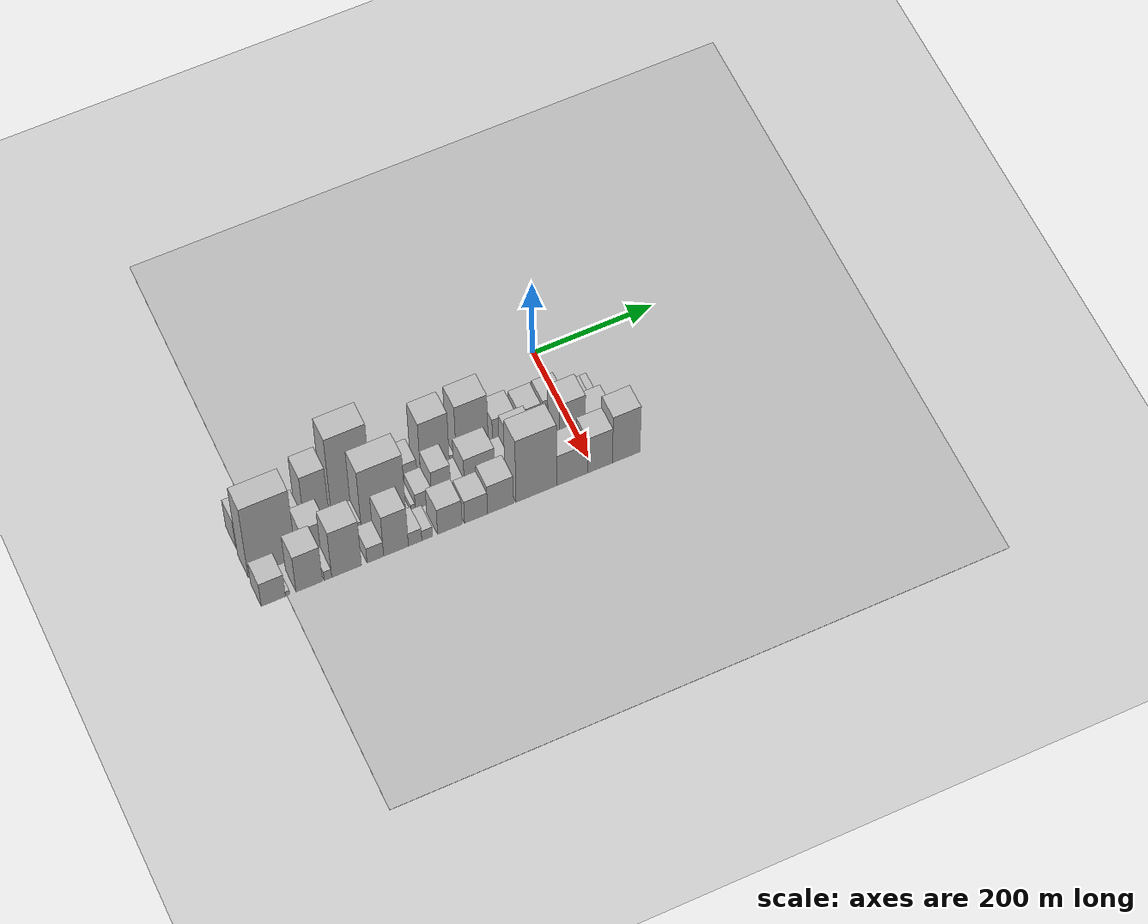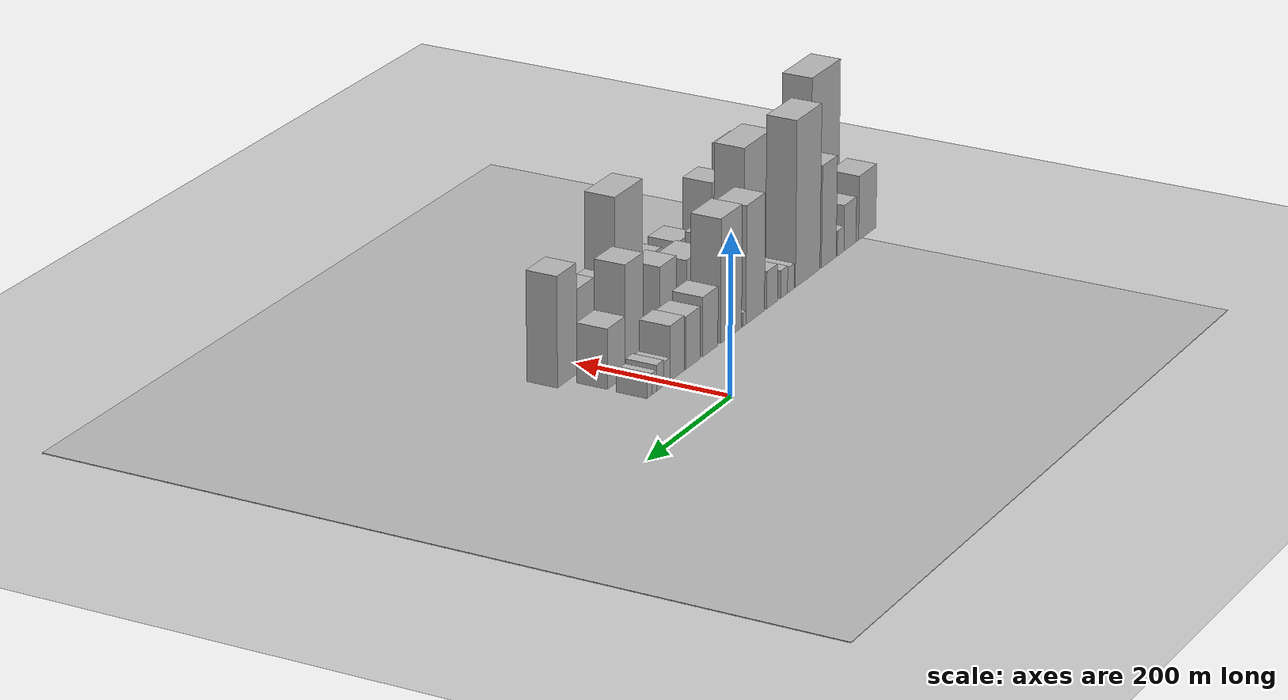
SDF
<sdf version="1.6">
 <world name="default">
  <include><name>ground_plane_1</name><uri>model://HANNAS_ground_plane</uri></include>
  <include>
   <name>ground_plane_2</name>
   <uri>model://HANNAS_ground_plane</uri>
   <pose>100 0 0  0 0 0</pose>
  </include>
  <model name="building_1">
   <static>1</static>
   <pose>100.0000 -514.2955 0 0.000000 0.000000 0.000000</pose>
   <link name="link">
    <pose>0 0 42.00 0 0 0</pose>
    <collision name="collision"><geometry><box><size>40.0000 47.4091 84.0000</size></box></geometry></collision>
    <visual name="visual">
     <cast_shadows>0</cast_shadows>
     <geometry><box><size>40.0000 47.4091 84.0000</size></box></geometry>
     <material>
      <script>
       <uri>model://HANNAS_wall/materials/scripts</uri>
       <uri>model://HANNAS_wall/materials/textures</uri>
       <name>vrc/HANNAS_wall</name>
      </script>
     </material>
    </visual>
   </link>
  </model>
  <model name="building_2">
   <static>1</static>
   <pose>100.0000 -486.8983 0 0.000000 0.000000 0.000000</pose>
   <link name="link">
    <pose>0 0 9.00 0 0 0</pose>
    <collision name="collision"><geometry><box><size>40.0000 7.3854 18.0000</size></box></geometry></collision>
    <visual name="visual">
     <cast_shadows>0</cast_shadows>
     <geometry><box><size>40.0000 7.3854 18.0000</size></box></geometry>
     <material>
      <script>
       <uri>model://HANNAS_wall/materials/scripts</uri>
       <uri>model://HANNAS_wall/materials/textures</uri>
       <name>vrc/HANNAS_wall</name>
      </script>
     </material>
    </visual>
   </link>
  </model>
  <model name="building_3">
   <static>1</static>
   <pose>100.0000 -466.7960 0 0.000000 0.000000 0.000000</pose>
   <link name="link">
    <pose>0 0 30.00 0 0 0</pose>
    <collision name="collision"><geometry><box><size>40.0000 32.8191 60.0000</size></box></geometry></collision>
    <visual name="visual">
     <cast_shadows>0</cast_shadows>
     <geometry><box><size>40.0000 32.8191 60.0000</size></box></geometry>
     <material>
      <script>
       <uri>model://HANNAS_wall/materials/scripts</uri>
       <uri>model://HANNAS_wall/materials/textures</uri>
       <name>vrc/HANNAS_wall</name>
      </script>
     </material>
    </visual>
   </link>
  </model>
  <model name="building_4">
   <static>1</static>
   <pose>100.0000 -441.3647 0 0.000000 0.000000 0.000000</pose>
   <link name="link">
    <pose>0 0 16.50 0 0 0</pose>
    <collision name="collision"><geometry><box><size>40.0000 18.0437 33.0000</size></box></geometry></collision>
    <visual name="visual">
     <cast_shadows>0</cast_shadows>
     <geometry><box><size>40.0000 18.0437 33.0000</size></box></geometry>
     <material>
      <script>
       <uri>model://HANNAS_wall/materials/scripts</uri>
       <uri>model://HANNAS_wall/materials/textures</uri>
       <name>vrc/HANNAS_wall</name>
      </script>
     </material>
    </visual>
   </link>
  </model>
  <model name="building_5">
   <static>1</static>
   <pose>100.0000 -409.4169 0 0.000000 0.000000 0.000000</pose>
   <link name="link">
    <pose>0 0 66.00 0 0 0</pose>
    <collision name="collision"><geometry><box><size>40.0000 39.8519 132.0000</size></box></geometry></collision>
    <visual name="visual">
     <cast_shadows>0</cast_shadows>
     <geometry><box><size>40.0000 39.8519 132.0000</size></box></geometry>
     <material>
      <script>
       <uri>model://HANNAS_wall/materials/scripts</uri>
       <uri>model://HANNAS_wall/materials/textures</uri>
       <name>vrc/HANNAS_wall</name>
      </script>
     </material>
    </visual>
   </link>
  </model>
  <model name="building_6">
   <static>1</static>
   <pose>100.0000 -352.8863 0 0.000000 0.000000 0.000000</pose>
   <link name="link">
    <pose>0 0 106.50 0 0 0</pose>
    <collision name="collision"><geometry><box><size>40.0000 65.2092 213.0000</size></box></geometry></collision>
    <visual name="visual">
     <cast_shadows>0</cast_shadows>
     <geometry><box><size>40.0000 65.2092 213.0000</size></box></geometry>
     <material>
      <script>
       <uri>model://HANNAS_wall/materials/scripts</uri>
       <uri>model://HANNAS_wall/materials/textures</uri>
       <name>vrc/HANNAS_wall</name>
      </script>
     </material>
    </visual>
   </link>
  </model>
  <model name="building_7">
   <static>1</static>
   <pose>100.0000 -308.5428 0 0.000000 0.000000 0.000000</pose>
   <link name="link">
    <pose>0 0 16.50 0 0 0</pose>
    <collision name="collision"><geometry><box><size>40.0000 17.4778 33.0000</size></box></geometry></collision>
    <visual name="visual">
     <cast_shadows>0</cast_shadows>
     <geometry><box><size>40.0000 17.4778 33.0000</size></box></geometry>
     <material>
      <script>
       <uri>model://HANNAS_wall/materials/scripts</uri>
       <uri>model://HANNAS_wall/materials/textures</uri>
       <name>vrc/HANNAS_wall</name>
      </script>
     </material>
    </visual>
   </link>
  </model>
  <model name="building_8">
   <static>1</static>
   <pose>100.0000 -290.7510 0 0.000000 0.000000 0.000000</pose>
   <link name="link">
    <pose>0 0 18.00 0 0 0</pose>
    <collision name="collision"><geometry><box><size>40.0000 18.1057 36.0000</size></box></geometry></collision>
    <visual name="visual">
     <cast_shadows>0</cast_shadows>
     <geometry><box><size>40.0000 18.1057 36.0000</size></box></geometry>
     <material>
      <script>
       <uri>model://HANNAS_wall/materials/scripts</uri>
       <uri>model://HANNAS_wall/materials/textures</uri>
       <name>vrc/HANNAS_wall</name>
      </script>
     </material>
    </visual>
   </link>
  </model>
  <model name="building_9">
   <static>1</static>
   <pose>100.0000 -259.7759 0 0.000000 0.000000 0.000000</pose>
   <link name="link">
    <pose>0 0 24.00 0 0 0</pose>
    <collision name="collision"><geometry><box><size>40.0000 27.8445 48.0000</size></box></geometry></collision>
    <visual name="visual">
     <cast_shadows>0</cast_shadows>
     <geometry><box><size>40.0000 27.8445 48.0000</size></box></geometry>
     <material>
      <script>
       <uri>model://HANNAS_wall/materials/scripts</uri>
       <uri>model://HANNAS_wall/materials/textures</uri>
       <name>vrc/HANNAS_wall</name>
      </script>
     </material>
    </visual>
   </link>
  </model>
  <model name="building_10">
   <static>1</static>
   <pose>100.0000 -216.1852 0 0.000000 0.000000 0.000000</pose>
   <link name="link">
    <pose>0 0 75.00 0 0 0</pose>
    <collision name="collision"><geometry><box><size>40.0000 47.3368 150.0000</size></box></geometry></collision>
    <visual name="visual">
     <cast_shadows>0</cast_shadows>
     <geometry><box><size>40.0000 47.3368 150.0000</size></box></geometry>
     <material>
      <script>
       <uri>model://HANNAS_wall/materials/scripts</uri>
       <uri>model://HANNAS_wall/materials/textures</uri>
       <name>vrc/HANNAS_wall</name>
      </script>
     </material>
    </visual>
   </link>
  </model>
  <model name="building_11">
   <static>1</static>
   <pose>100.0000 -188.3628 0 0.000000 0.000000 0.000000</pose>
   <link name="link">
    <pose>0 0 9.00 0 0 0</pose>
    <collision name="collision"><geometry><box><size>40.0000 8.3081 18.0000</size></box></geometry></collision>
    <visual name="visual">
     <cast_shadows>0</cast_shadows>
     <geometry><box><size>40.0000 8.3081 18.0000</size></box></geometry>
     <material>
      <script>
       <uri>model://HANNAS_wall/materials/scripts</uri>
       <uri>model://HANNAS_wall/materials/textures</uri>
       <name>vrc/HANNAS_wall</name>
      </script>
     </material>
    </visual>
   </link>
  </model>
  <model name="building_12">
   <static>1</static>
   <pose>100.0000 -154.8625 0 0.000000 0.000000 0.000000</pose>
   <link name="link">
    <pose>0 0 78.00 0 0 0</pose>
    <collision name="collision"><geometry><box><size>40.0000 52.6923 156.0000</size></box></geometry></collision>
    <visual name="visual">
     <cast_shadows>0</cast_shadows>
     <geometry><box><size>40.0000 52.6923 156.0000</size></box></geometry>
     <material>
      <script>
       <uri>model://HANNAS_wall/materials/scripts</uri>
       <uri>model://HANNAS_wall/materials/textures</uri>
       <name>vrc/HANNAS_wall</name>
      </script>
     </material>
    </visual>
   </link>
  </model>
  <model name="building_13">
   <static>1</static>
   <pose>100.0000 -102.5972 0 0.000000 0.000000 0.000000</pose>
   <link name="link">
    <pose>0 0 37.50 0 0 0</pose>
    <collision name="collision"><geometry><box><size>40.0000 37.8382 75.0000</size></box></geometry></collision>
    <visual name="visual">
     <cast_shadows>0</cast_shadows>
     <geometry><box><size>40.0000 37.8382 75.0000</size></box></geometry>
     <material>
      <script>
       <uri>model://HANNAS_wall/materials/scripts</uri>
       <uri>model://HANNAS_wall/materials/textures</uri>
       <name>vrc/HANNAS_wall</name>
      </script>
     </material>
    </visual>
   </link>
  </model>
  <model name="building_14">
   <static>1</static>
   <pose>100.0000 -59.6214 0 0.000000 0.000000 0.000000</pose>
   <link name="link">
    <pose>0 0 33.00 0 0 0</pose>
    <collision name="collision"><geometry><box><size>40.0000 36.1136 66.0000</size></box></geometry></collision>
    <visual name="visual">
     <cast_shadows>0</cast_shadows>
     <geometry><box><size>40.0000 36.1136 66.0000</size></box></geometry>
     <material>
      <script>
       <uri>model://HANNAS_wall/materials/scripts</uri>
       <uri>model://HANNAS_wall/materials/textures</uri>
       <name>vrc/HANNAS_wall</name>
      </script>
     </material>
    </visual>
   </link>
  </model>
  <model name="building_15">
   <static>1</static>
   <pose>100.0000 -21.0371 0 0.000000 0.000000 0.000000</pose>
   <link name="link">
    <pose>0 0 34.50 0 0 0</pose>
    <collision name="collision"><geometry><box><size>40.0000 35.0550 69.0000</size></box></geometry></collision>
    <visual name="visual">
     <cast_shadows>0</cast_shadows>
     <geometry><box><size>40.0000 35.0550 69.0000</size></box></geometry>
     <material>
      <script>
       <uri>model://HANNAS_wall/materials/scripts</uri>
       <uri>model://HANNAS_wall/materials/textures</uri>
       <name>vrc/HANNAS_wall</name>
      </script>
     </material>
    </visual>
   </link>
  </model>
  <model name="building_16">
   <static>1</static>
   <pose>100.0000 4.1578 0 0.000000 0.000000 0.000000</pose>
   <link name="link">
    <pose>0 0 15.00 0 0 0</pose>
    <collision name="collision"><geometry><box><size>40.0000 15.3347 30.0000</size></box></geometry></collision>
    <visual name="visual">
     <cast_shadows>0</cast_shadows>
     <geometry><box><size>40.0000 15.3347 30.0000</size></box></geometry>
     <material>
      <script>
       <uri>model://HANNAS_wall/materials/scripts</uri>
       <uri>model://HANNAS_wall/materials/textures</uri>
       <name>vrc/HANNAS_wall</name>
      </script>
     </material>
    </visual>
   </link>
  </model>
  <model name="building_17">
   <static>1</static>
   <pose>100.0000 20.5134 0 0.000000 0.000000 0.000000</pose>
   <link name="link">
    <pose>0 0 16.50 0 0 0</pose>
    <collision name="collision"><geometry><box><size>40.0000 17.3766 33.0000</size></box></geometry></collision>
    <visual name="visual">
     <cast_shadows>0</cast_shadows>
     <geometry><box><size>40.0000 17.3766 33.0000</size></box></geometry>
     <material>
      <script>
       <uri>model://HANNAS_wall/materials/scripts</uri>
       <uri>model://HANNAS_wall/materials/textures</uri>
       <name>vrc/HANNAS_wall</name>
      </script>
     </material>
    </visual>
   </link>
  </model>
  <model name="building_18">
   <static>1</static>
   <pose>100.0000 34.6201 0 0.000000 0.000000 0.000000</pose>
   <link name="link">
    <pose>0 0 13.50 0 0 0</pose>
    <collision name="collision"><geometry><box><size>40.0000 10.8368 27.0000</size></box></geometry></collision>
    <visual name="visual">
     <cast_shadows>0</cast_shadows>
     <geometry><box><size>40.0000 10.8368 27.0000</size></box></geometry>
     <material>
      <script>
       <uri>model://HANNAS_wall/materials/scripts</uri>
       <uri>model://HANNAS_wall/materials/textures</uri>
       <name>vrc/HANNAS_wall</name>
      </script>
     </material>
    </visual>
   </link>
  </model>
  <model name="building_19">
   <static>1</static>
   <pose>100.0000 45.8393 0 0.000000 0.000000 0.000000</pose>
   <link name="link">
    <pose>0 0 13.50 0 0 0</pose>
    <collision name="collision"><geometry><box><size>40.0000 11.6015 27.0000</size></box></geometry></collision>
    <visual name="visual">
     <cast_shadows>0</cast_shadows>
     <geometry><box><size>40.0000 11.6015 27.0000</size></box></geometry>
     <material>
      <script>
       <uri>model://HANNAS_wall/materials/scripts</uri>
       <uri>model://HANNAS_wall/materials/textures</uri>
       <name>vrc/HANNAS_wall</name>
      </script>
     </material>
    </visual>
   </link>
  </model>
  <model name="building_40">
   <static>1</static>
   <pose>152.0000 -501.7567 0 0.000000 0.000000 0.000000</pose>
   <link name="link">
    <pose>0 0 105.00 0 0 0</pose>
    <collision name="collision"><geometry><box><size>40.0000 76.4865 210.0000</size></box></geometry></collision>
    <visual name="visual">
     <cast_shadows>0</cast_shadows>
     <geometry><box><size>40.0000 76.4865 210.0000</size></box></geometry>
     <material>
      <script>
       <uri>model://HANNAS_wall/materials/scripts</uri>
       <uri>model://HANNAS_wall/materials/textures</uri>
       <name>vrc/HANNAS_wall</name>
      </script>
     </material>
    </visual>
   </link>
  </model>
  <model name="building_41">
   <static>1</static>
   <pose>152.0000 -433.1992 0 0.000000 0.000000 0.000000</pose>
   <link name="link">
    <pose>0 0 39.00 0 0 0</pose>
    <collision name="collision"><geometry><box><size>40.0000 40.6286 78.0000</size></box></geometry></collision>
    <visual name="visual">
     <cast_shadows>0</cast_shadows>
     <geometry><box><size>40.0000 40.6286 78.0000</size></box></geometry>
     <material>
      <script>
       <uri>model://HANNAS_wall/materials/scripts</uri>
       <uri>model://HANNAS_wall/materials/textures</uri>
       <name>vrc/HANNAS_wall</name>
      </script>
     </material>
    </visual>
   </link>
  </model>
  <model name="building_42">
   <static>1</static>
   <pose>152.0000 -409.1703 0 0.000000 0.000000 0.000000</pose>
   <link name="link">
    <pose>0 0 7.50 0 0 0</pose>
    <collision name="collision"><geometry><box><size>40.0000 7.4292 15.0000</size></box></geometry></collision>
    <visual name="visual">
     <cast_shadows>0</cast_shadows>
     <geometry><box><size>40.0000 7.4292 15.0000</size></box></geometry>
     <material>
      <script>
       <uri>model://HANNAS_wall/materials/scripts</uri>
       <uri>model://HANNAS_wall/materials/textures</uri>
       <name>vrc/HANNAS_wall</name>
      </script>
     </material>
    </visual>
   </link>
  </model>
  <model name="building_43">
   <static>1</static>
   <pose>152.0000 -385.8464 0 0.000000 0.000000 0.000000</pose>
   <link name="link">
    <pose>0 0 19.50 0 0 0</pose>
    <collision name="collision"><geometry><box><size>40.0000 21.2186 39.0000</size></box></geometry></collision>
    <visual name="visual">
     <cast_shadows>0</cast_shadows>
     <geometry><box><size>40.0000 21.2186 39.0000</size></box></geometry>
     <material>
      <script>
       <uri>model://HANNAS_wall/materials/scripts</uri>
       <uri>model://HANNAS_wall/materials/textures</uri>
       <name>vrc/HANNAS_wall</name>
      </script>
     </material>
    </visual>
   </link>
  </model>
  <model name="building_44">
   <static>1</static>
   <pose>152.0000 -366.7933 0 0.000000 0.000000 0.000000</pose>
   <link name="link">
    <pose>0 0 15.00 0 0 0</pose>
    <collision name="collision"><geometry><box><size>40.0000 16.8875 30.0000</size></box></geometry></collision>
    <visual name="visual">
     <cast_shadows>0</cast_shadows>
     <geometry><box><size>40.0000 16.8875 30.0000</size></box></geometry>
     <material>
      <script>
       <uri>model://HANNAS_wall/materials/scripts</uri>
       <uri>model://HANNAS_wall/materials/textures</uri>
       <name>vrc/HANNAS_wall</name>
      </script>
     </material>
    </visual>
   </link>
  </model>
  <model name="building_45">
   <static>1</static>
   <pose>152.0000 -322.4286 0 0.000000 0.000000 0.000000</pose>
   <link name="link">
    <pose>0 0 90.00 0 0 0</pose>
    <collision name="collision"><geometry><box><size>40.0000 71.8419 180.0000</size></box></geometry></collision>
    <visual name="visual">
     <cast_shadows>0</cast_shadows>
     <geometry><box><size>40.0000 71.8419 180.0000</size></box></geometry>
     <material>
      <script>
       <uri>model://HANNAS_wall/materials/scripts</uri>
       <uri>model://HANNAS_wall/materials/textures</uri>
       <name>vrc/HANNAS_wall</name>
      </script>
     </material>
    </visual>
   </link>
  </model>
  <model name="building_46">
   <static>1</static>
   <pose>152.0000 -274.7746 0 0.000000 0.000000 0.000000</pose>
   <link name="link">
    <pose>0 0 9.00 0 0 0</pose>
    <collision name="collision"><geometry><box><size>40.0000 7.4662 18.0000</size></box></geometry></collision>
    <visual name="visual">
     <cast_shadows>0</cast_shadows>
     <geometry><box><size>40.0000 7.4662 18.0000</size></box></geometry>
     <material>
      <script>
       <uri>model://HANNAS_wall/materials/scripts</uri>
       <uri>model://HANNAS_wall/materials/textures</uri>
       <name>vrc/HANNAS_wall</name>
      </script>
     </material>
    </visual>
   </link>
  </model>
  <model name="building_47">
   <static>1</static>
   <pose>152.0000 -257.5710 0 0.000000 0.000000 0.000000</pose>
   <link name="link">
    <pose>0 0 22.50 0 0 0</pose>
    <collision name="collision"><geometry><box><size>40.0000 26.9411 45.0000</size></box></geometry></collision>
    <visual name="visual">
     <cast_shadows>0</cast_shadows>
     <geometry><box><size>40.0000 26.9411 45.0000</size></box></geometry>
     <material>
      <script>
       <uri>model://HANNAS_wall/materials/scripts</uri>
       <uri>model://HANNAS_wall/materials/textures</uri>
       <name>vrc/HANNAS_wall</name>
      </script>
     </material>
    </visual>
   </link>
  </model>
  <model name="building_48">
   <static>1</static>
   <pose>152.0000 -228.5603 0 0.000000 0.000000 0.000000</pose>
   <link name="link">
    <pose>0 0 46.50 0 0 0</pose>
    <collision name="collision"><geometry><box><size>40.0000 31.0802 93.0000</size></box></geometry></collision>
    <visual name="visual">
     <cast_shadows>0</cast_shadows>
     <geometry><box><size>40.0000 31.0802 93.0000</size></box></geometry>
     <material>
      <script>
       <uri>model://HANNAS_wall/materials/scripts</uri>
       <uri>model://HANNAS_wall/materials/textures</uri>
       <name>vrc/HANNAS_wall</name>
      </script>
     </material>
    </visual>
   </link>
  </model>
  <model name="building_49">
   <static>1</static>
   <pose>152.0000 -200.5107 0 0.000000 0.000000 0.000000</pose>
   <link name="link">
    <pose>0 0 16.50 0 0 0</pose>
    <collision name="collision"><geometry><box><size>40.0000 19.0191 33.0000</size></box></geometry></collision>
    <visual name="visual">
     <cast_shadows>0</cast_shadows>
     <geometry><box><size>40.0000 19.0191 33.0000</size></box></geometry>
     <material>
      <script>
       <uri>model://HANNAS_wall/materials/scripts</uri>
       <uri>model://HANNAS_wall/materials/textures</uri>
       <name>vrc/HANNAS_wall</name>
      </script>
     </material>
    </visual>
   </link>
  </model>
  <model name="building_50">
   <static>1</static>
   <pose>152.0000 -166.1825 0 0.000000 0.000000 0.000000</pose>
   <link name="link">
    <pose>0 0 45.00 0 0 0</pose>
    <collision name="collision"><geometry><box><size>40.0000 49.6372 90.0000</size></box></geometry></collision>
    <visual name="visual">
     <cast_shadows>0</cast_shadows>
     <geometry><box><size>40.0000 49.6372 90.0000</size></box></geometry>
     <material>
      <script>
       <uri>model://HANNAS_wall/materials/scripts</uri>
       <uri>model://HANNAS_wall/materials/textures</uri>
       <name>vrc/HANNAS_wall</name>
      </script>
     </material>
    </visual>
   </link>
  </model>
  <model name="building_51">
   <static>1</static>
   <pose>152.0000 -128.8880 0 0.000000 0.000000 0.000000</pose>
   <link name="link">
    <pose>0 0 21.00 0 0 0</pose>
    <collision name="collision"><geometry><box><size>40.0000 24.9519 42.0000</size></box></geometry></collision>
    <visual name="visual">
     <cast_shadows>0</cast_shadows>
     <geometry><box><size>40.0000 24.9519 42.0000</size></box></geometry>
     <material>
      <script>
       <uri>model://HANNAS_wall/materials/scripts</uri>
       <uri>model://HANNAS_wall/materials/textures</uri>
       <name>vrc/HANNAS_wall</name>
      </script>
     </material>
    </visual>
   </link>
  </model>
  <model name="building_52">
   <static>1</static>
   <pose>152.0000 -96.3325 0 0.000000 0.000000 0.000000</pose>
   <link name="link">
    <pose>0 0 52.50 0 0 0</pose>
    <collision name="collision"><geometry><box><size>40.0000 40.1591 105.0000</size></box></geometry></collision>
    <visual name="visual">
     <cast_shadows>0</cast_shadows>
     <geometry><box><size>40.0000 40.1591 105.0000</size></box></geometry>
     <material>
      <script>
       <uri>model://HANNAS_wall/materials/scripts</uri>
       <uri>model://HANNAS_wall/materials/textures</uri>
       <name>vrc/HANNAS_wall</name>
      </script>
     </material>
    </visual>
   </link>
  </model>
  <model name="building_53">
   <static>1</static>
   <pose>152.0000 -66.8950 0 0.000000 0.000000 0.000000</pose>
   <link name="link">
    <pose>0 0 16.50 0 0 0</pose>
    <collision name="collision"><geometry><box><size>40.0000 18.7159 33.0000</size></box></geometry></collision>
    <visual name="visual">
     <cast_shadows>0</cast_shadows>
     <geometry><box><size>40.0000 18.7159 33.0000</size></box></geometry>
     <material>
      <script>
       <uri>model://HANNAS_wall/materials/scripts</uri>
       <uri>model://HANNAS_wall/materials/textures</uri>
       <name>vrc/HANNAS_wall</name>
      </script>
     </material>
    </visual>
   </link>
  </model>
  <model name="building_54">
   <static>1</static>
   <pose>152.0000 -46.5551 0 0.000000 0.000000 0.000000</pose>
   <link name="link">
    <pose>0 0 21.00 0 0 0</pose>
    <collision name="collision"><geometry><box><size>40.0000 21.9638 42.0000</size></box></geometry></collision>
    <visual name="visual">
     <cast_shadows>0</cast_shadows>
     <geometry><box><size>40.0000 21.9638 42.0000</size></box></geometry>
     <material>
      <script>
       <uri>model://HANNAS_wall/materials/scripts</uri>
       <uri>model://HANNAS_wall/materials/textures</uri>
       <name>vrc/HANNAS_wall</name>
      </script>
     </material>
    </visual>
   </link>
  </model>
  <model name="building_55">
   <static>1</static>
   <pose>152.0000 -14.0715 0 0.000000 0.000000 0.000000</pose>
   <link name="link">
    <pose>0 0 69.00 0 0 0</pose>
    <collision name="collision"><geometry><box><size>40.0000 43.0035 138.0000</size></box></geometry></collision>
    <visual name="visual">
     <cast_shadows>0</cast_shadows>
     <geometry><box><size>40.0000 43.0035 138.0000</size></box></geometry>
     <material>
      <script>
       <uri>model://HANNAS_wall/materials/scripts</uri>
       <uri>model://HANNAS_wall/materials/textures</uri>
       <name>vrc/HANNAS_wall</name>
      </script>
     </material>
    </visual>
   </link>
  </model>
  <model name="building_56">
   <static>1</static>
   <pose>152.0000 28.7573 0 0.000000 0.000000 0.000000</pose>
   <link name="link">
    <pose>0 0 37.50 0 0 0</pose>
    <collision name="collision"><geometry><box><size>40.0000 42.6541 75.0000</size></box></geometry></collision>
    <visual name="visual">
     <cast_shadows>0</cast_shadows>
     <geometry><box><size>40.0000 42.6541 75.0000</size></box></geometry>
     <material>
      <script>
       <uri>model://HANNAS_wall/materials/scripts</uri>
       <uri>model://HANNAS_wall/materials/textures</uri>
       <name>vrc/HANNAS_wall</name>
      </script>
     </material>
    </visual>
   </link>
  </model>
  <model name="building_73">
   <static>1</static>
   <pose>204.0000 -521.6760 0 0.000000 0.000000 0.000000</pose>
   <link name="link">
    <pose>0 0 34.50 0 0 0</pose>
    <collision name="collision"><geometry><box><size>40.0000 38.6480 69.0000</size></box></geometry></collision>
    <visual name="visual">
     <cast_shadows>0</cast_shadows>
     <geometry><box><size>40.0000 38.6480 69.0000</size></box></geometry>
     <material>
      <script>
       <uri>model://HANNAS_wall/materials/scripts</uri>
       <uri>model://HANNAS_wall/materials/textures</uri>
       <name>vrc/HANNAS_wall</name>
      </script>
     </material>
    </visual>
   </link>
  </model>
  <model name="building_74">
   <static>1</static>
   <pose>204.0000 -498.9502 0 0.000000 0.000000 0.000000</pose>
   <link name="link">
    <pose>0 0 7.50 0 0 0</pose>
    <collision name="collision"><geometry><box><size>40.0000 6.8036 15.0000</size></box></geometry></collision>
    <visual name="visual">
     <cast_shadows>0</cast_shadows>
     <geometry><box><size>40.0000 6.8036 15.0000</size></box></geometry>
     <material>
      <script>
       <uri>model://HANNAS_wall/materials/scripts</uri>
       <uri>model://HANNAS_wall/materials/textures</uri>
       <name>vrc/HANNAS_wall</name>
      </script>
     </material>
    </visual>
   </link>
  </model>
  <model name="building_75">
   <static>1</static>
   <pose>204.0000 -464.4896 0 0.000000 0.000000 0.000000</pose>
   <link name="link">
    <pose>0 0 54.00 0 0 0</pose>
    <collision name="collision"><geometry><box><size>40.0000 42.1176 108.0000</size></box></geometry></collision>
    <visual name="visual">
     <cast_shadows>0</cast_shadows>
     <geometry><box><size>40.0000 42.1176 108.0000</size></box></geometry>
     <material>
      <script>
       <uri>model://HANNAS_wall/materials/scripts</uri>
       <uri>model://HANNAS_wall/materials/textures</uri>
       <name>vrc/HANNAS_wall</name>
      </script>
     </material>
    </visual>
   </link>
  </model>
  <model name="building_76">
   <static>1</static>
   <pose>204.0000 -434.4871 0 0.000000 0.000000 0.000000</pose>
   <link name="link">
    <pose>0 0 13.50 0 0 0</pose>
    <collision name="collision"><geometry><box><size>40.0000 11.8874 27.0000</size></box></geometry></collision>
    <visual name="visual">
     <cast_shadows>0</cast_shadows>
     <geometry><box><size>40.0000 11.8874 27.0000</size></box></geometry>
     <material>
      <script>
       <uri>model://HANNAS_wall/materials/scripts</uri>
       <uri>model://HANNAS_wall/materials/textures</uri>
       <name>vrc/HANNAS_wall</name>
      </script>
     </material>
    </visual>
   </link>
  </model>
  <model name="building_77">
   <static>1</static>
   <pose>204.0000 -404.6946 0 0.000000 0.000000 0.000000</pose>
   <link name="link">
    <pose>0 0 69.00 0 0 0</pose>
    <collision name="collision"><geometry><box><size>40.0000 47.6976 138.0000</size></box></geometry></collision>
    <visual name="visual">
     <cast_shadows>0</cast_shadows>
     <geometry><box><size>40.0000 47.6976 138.0000</size></box></geometry>
     <material>
      <script>
       <uri>model://HANNAS_wall/materials/scripts</uri>
       <uri>model://HANNAS_wall/materials/textures</uri>
       <name>vrc/HANNAS_wall</name>
      </script>
     </material>
    </visual>
   </link>
  </model>
  <model name="building_78">
   <static>1</static>
   <pose>204.0000 -358.5233 0 0.000000 0.000000 0.000000</pose>
   <link name="link">
    <pose>0 0 22.50 0 0 0</pose>
    <collision name="collision"><geometry><box><size>40.0000 26.6450 45.0000</size></box></geometry></collision>
    <visual name="visual">
     <cast_shadows>0</cast_shadows>
     <geometry><box><size>40.0000 26.6450 45.0000</size></box></geometry>
     <material>
      <script>
       <uri>model://HANNAS_wall/materials/scripts</uri>
       <uri>model://HANNAS_wall/materials/textures</uri>
       <name>vrc/HANNAS_wall</name>
      </script>
     </material>
    </visual>
   </link>
  </model>
  <model name="building_79">
   <static>1</static>
   <pose>204.0000 -325.2305 0 0.000000 0.000000 0.000000</pose>
   <link name="link">
    <pose>0 0 60.00 0 0 0</pose>
    <collision name="collision"><geometry><box><size>40.0000 39.9407 120.0000</size></box></geometry></collision>
    <visual name="visual">
     <cast_shadows>0</cast_shadows>
     <geometry><box><size>40.0000 39.9407 120.0000</size></box></geometry>
     <material>
      <script>
       <uri>model://HANNAS_wall/materials/scripts</uri>
       <uri>model://HANNAS_wall/materials/textures</uri>
       <name>vrc/HANNAS_wall</name>
      </script>
     </material>
    </visual>
   </link>
  </model>
  <model name="building_80">
   <static>1</static>
   <pose>204.0000 -294.3915 0 0.000000 0.000000 0.000000</pose>
   <link name="link">
    <pose>0 0 19.50 0 0 0</pose>
    <collision name="collision"><geometry><box><size>40.0000 21.7373 39.0000</size></box></geometry></collision>
    <visual name="visual">
     <cast_shadows>0</cast_shadows>
     <geometry><box><size>40.0000 21.7373 39.0000</size></box></geometry>
     <material>
      <script>
       <uri>model://HANNAS_wall/materials/scripts</uri>
       <uri>model://HANNAS_wall/materials/textures</uri>
       <name>vrc/HANNAS_wall</name>
      </script>
     </material>
    </visual>
   </link>
  </model>
  <model name="building_81">
   <static>1</static>
   <pose>204.0000 -274.7906 0 0.000000 0.000000 0.000000</pose>
   <link name="link">
    <pose>0 0 15.00 0 0 0</pose>
    <collision name="collision"><geometry><box><size>40.0000 17.4647 30.0000</size></box></geometry></collision>
    <visual name="visual">
     <cast_shadows>0</cast_shadows>
     <geometry><box><size>40.0000 17.4647 30.0000</size></box></geometry>
     <material>
      <script>
       <uri>model://HANNAS_wall/materials/scripts</uri>
       <uri>model://HANNAS_wall/materials/textures</uri>
       <name>vrc/HANNAS_wall</name>
      </script>
     </material>
    </visual>
   </link>
  </model>
  <model name="building_82">
   <static>1</static>
   <pose>204.0000 -238.1747 0 0.000000 0.000000 0.000000</pose>
   <link name="link">
    <pose>0 0 37.50 0 0 0</pose>
    <collision name="collision"><geometry><box><size>40.0000 39.7671 75.0000</size></box></geometry></collision>
    <visual name="visual">
     <cast_shadows>0</cast_shadows>
     <geometry><box><size>40.0000 39.7671 75.0000</size></box></geometry>
     <material>
      <script>
       <uri>model://HANNAS_wall/materials/scripts</uri>
       <uri>model://HANNAS_wall/materials/textures</uri>
       <name>vrc/HANNAS_wall</name>
      </script>
     </material>
    </visual>
   </link>
  </model>
  <model name="building_83">
   <static>1</static>
   <pose>204.0000 -195.5956 0 0.000000 0.000000 0.000000</pose>
   <link name="link">
    <pose>0 0 33.00 0 0 0</pose>
    <collision name="collision"><geometry><box><size>40.0000 37.3911 66.0000</size></box></geometry></collision>
    <visual name="visual">
     <cast_shadows>0</cast_shadows>
     <geometry><box><size>40.0000 37.3911 66.0000</size></box></geometry>
     <material>
      <script>
       <uri>model://HANNAS_wall/materials/scripts</uri>
       <uri>model://HANNAS_wall/materials/textures</uri>
       <name>vrc/HANNAS_wall</name>
      </script>
     </material>
    </visual>
   </link>
  </model>
  <model name="building_84">
   <static>1</static>
   <pose>204.0000 -155.6170 0 0.000000 0.000000 0.000000</pose>
   <link name="link">
    <pose>0 0 42.00 0 0 0</pose>
    <collision name="collision"><geometry><box><size>40.0000 42.5661 84.0000</size></box></geometry></collision>
    <visual name="visual">
     <cast_shadows>0</cast_shadows>
     <geometry><box><size>40.0000 42.5661 84.0000</size></box></geometry>
     <material>
      <script>
       <uri>model://HANNAS_wall/materials/scripts</uri>
       <uri>model://HANNAS_wall/materials/textures</uri>
       <name>vrc/HANNAS_wall</name>
      </script>
     </material>
    </visual>
   </link>
  </model>
  <model name="building_85">
   <static>1</static>
   <pose>204.0000 -97.1246 0 0.000000 0.000000 0.000000</pose>
   <link name="link">
    <pose>0 0 93.00 0 0 0</pose>
    <collision name="collision"><geometry><box><size>40.0000 66.4187 186.0000</size></box></geometry></collision>
    <visual name="visual">
     <cast_shadows>0</cast_shadows>
     <geometry><box><size>40.0000 66.4187 186.0000</size></box></geometry>
     <material>
      <script>
       <uri>model://HANNAS_wall/materials/scripts</uri>
       <uri>model://HANNAS_wall/materials/textures</uri>
       <name>vrc/HANNAS_wall</name>
      </script>
     </material>
    </visual>
   </link>
  </model>
  <model name="building_86">
   <static>1</static>
   <pose>204.0000 -38.5530 0 0.000000 0.000000 0.000000</pose>
   <link name="link">
    <pose>0 0 45.00 0 0 0</pose>
    <collision name="collision"><geometry><box><size>40.0000 50.7244 90.0000</size></box></geometry></collision>
    <visual name="visual">
     <cast_shadows>0</cast_shadows>
     <geometry><box><size>40.0000 50.7244 90.0000</size></box></geometry>
     <material>
      <script>
       <uri>model://HANNAS_wall/materials/scripts</uri>
       <uri>model://HANNAS_wall/materials/textures</uri>
       <name>vrc/HANNAS_wall</name>
      </script>
     </material>
    </visual>
   </link>
  </model>
  <model name="building_87">
   <static>1</static>
   <pose>204.0000 7.4668 0 0.000000 0.000000 0.000000</pose>
   <link name="link">
    <pose>0 0 52.50 0 0 0</pose>
    <collision name="collision"><geometry><box><size>40.0000 41.3153 105.0000</size></box></geometry></collision>
    <visual name="visual">
     <cast_shadows>0</cast_shadows>
     <geometry><box><size>40.0000 41.3153 105.0000</size></box></geometry>
     <material>
      <script>
       <uri>model://HANNAS_wall/materials/scripts</uri>
       <uri>model://HANNAS_wall/materials/textures</uri>
       <name>vrc/HANNAS_wall</name>
      </script>
     </material>
    </visual>
   </link>
  </model>
  <model name="building_88">
   <static>1</static>
   <pose>204.0000 50.8541 0 0.000000 0.000000 0.000000</pose>
   <link name="link">
    <pose>0 0 69.00 0 0 0</pose>
    <collision name="collision"><geometry><box><size>40.0000 45.4592 138.0000</size></box></geometry></collision>
    <visual name="visual">
     <cast_shadows>0</cast_shadows>
     <geometry><box><size>40.0000 45.4592 138.0000</size></box></geometry>
     <material>
      <script>
       <uri>model://HANNAS_wall/materials/scripts</uri>
       <uri>model://HANNAS_wall/materials/textures</uri>
       <name>vrc/HANNAS_wall</name>
      </script>
     </material>
    </visual>
   </link>
  </model>
 </world>
</sdf>
